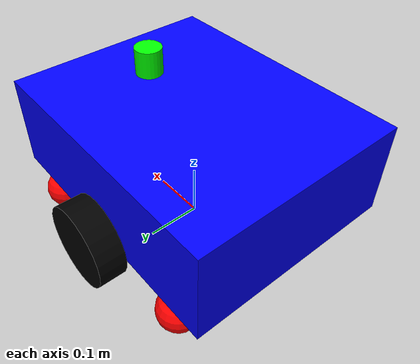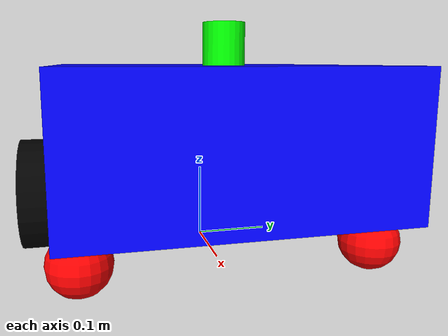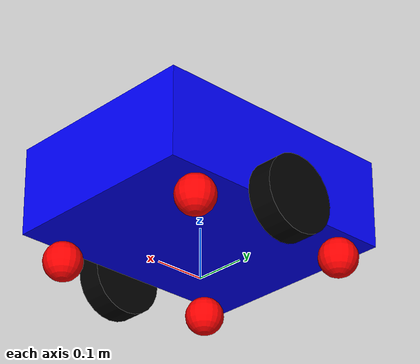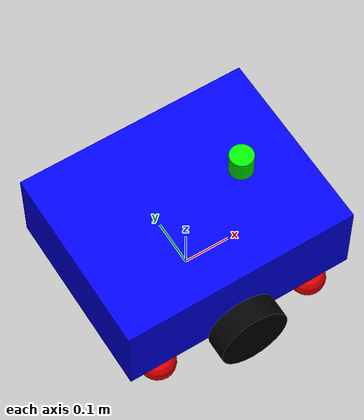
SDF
<?xml version="1.0" ?>
<sdf version="1.8">
    <model name="prestobot">

        <pose>0.0 0.0 0.0 0.0 0.0 0.0</pose>

        <link name='base_footprint'>

            <pose relative_to='__model__'>0.0 0.0 0.0 0.0 0.0 0.0</pose>

        </link>

        <link name='base_link'>

            <pose relative_to='base_footprint'>0.0 0.0 0.1625 0.0 0.0 0.0</pose>

            <inertial>
                <mass>30.0</mass>
                <inertia>
                    <ixx>0.4765625</ixx>
                    <ixy>0.0</ixy>
                    <ixz>0.0</ixz>
                    <iyy>0.7015625</iyy>
                    <iyz>0.0</iyz>
                    <izz>1.025</izz>
                </inertia>
            </inertial>

            <visual name='base_visual'>
                <geometry>
                    <box>
                        <size>0.5 0.4 0.175</size>
                    </box>
                </geometry>
                <material>
                    <ambient>0.0 0.0 1.0 1.0</ambient>
                    <diffuse>0.0 0.0 1.0 1.0</diffuse>
                    <specular>0.5 0.5 0.5 1.0</specular>
                    <emissive>0.0 0.0 0.0 1.0</emissive>
                </material>
            </visual>

            <collision name='base_collision'>
                <geometry>
                    <box>
                        <size>0.5 0.4 0.175</size>
                    </box>
                </geometry>
            </collision>

        </link>

        <link name='wheel_left_link'>

            <pose relative_to='base_link'>0.0 0.225 -0.0875 1.57 0.0 0.0</pose>

            <inertial>
                <mass>2.0</mass>
                <inertia>
                    <ixx>3.2291666e-03</ixx>
                    <ixy>0.0</ixy>
                    <ixz>0.0</ixz>
                    <iyy>3.2291666e-03</iyy>
                    <iyz>0.0</iyz>
                    <izz>5.625e-03</izz>
                </inertia>
            </inertial>

            <visual name='wheel_left_visual'>
                <geometry>
                    <cylinder>
                        <radius>0.075</radius>
                        <length>0.05</length>
                    </cylinder>
                </geometry>
                <material>
                    <ambient>0.0 0.0 0.0 1.0</ambient>
                    <diffuse>0.0 0.0 0.0 1.0</diffuse>
                    <specular>0.5 0.5 0.5 1.0</specular>
                    <emissive>0.0 0.0 0.0 1.0</emissive>
                </material>
            </visual>

            <collision name='wheel_left_collision'>
                <geometry>
                    <cylinder>
                        <radius>0.075</radius>
                        <length>0.05</length>
                    </cylinder>
                </geometry>
            </collision>

        </link>

        <link name='wheel_right_link'>

            <pose relative_to='base_link'>0.0 -0.225 -0.0875 1.57 0.0 0.0</pose>

            <inertial>
                <mass>2.0</mass>
                <inertia>
                    <ixx>3.2291666e-03</ixx>
                    <ixy>0.0</ixy>
                    <ixz>0.0</ixz>
                    <iyy>3.2291666e-03</iyy>
                    <iyz>0.0</iyz>
                    <izz>5.625e-03</izz>
                </inertia>
            </inertial>

            <visual name='wheel_right_visual'>
                <geometry>
                    <cylinder>
                        <radius>0.075</radius>
                        <length>0.05</length>
                    </cylinder>
                </geometry>
                <material>
                    <ambient>0.0 0.0 0.0 1.0</ambient>
                    <diffuse>0.0 0.0 0.0 1.0</diffuse>
                    <specular>0.5 0.5 0.5 1.0</specular>
                    <emissive>0.0 0.0 0.0 1.0</emissive>
                </material>
            </visual>

            <collision name='wheel_right_collision'>
                <geometry>
                    <cylinder>
                        <radius>0.075</radius>
                        <length>0.05</length>
                    </cylinder>
                </geometry>
            </collision>

        </link>

        <link name='caster_back_left_link'>

            <pose relative_to='base_link'>-0.175 0.175 -0.125 0.0 0.0 0.0</pose>

            <inertial>
                <mass>1.5</mass>
                <inertia>
                    <ixx>8.4375e-04</ixx>
                    <ixy>0.0</ixy>
                    <ixz>0.0</ixz>
                    <iyy>8.4375e-04</iyy>
                    <iyz>0.0</iyz>
                    <izz>8.4375e-04</izz>
                </inertia>
            </inertial>

            <visual name='caster_visual'>
                <geometry>
                    <sphere>
                        <radius>0.0375</radius>
                    </sphere>
                </geometry>
                <material>
                    <ambient>1.0 0.0 0.0 1.0</ambient>
                    <diffuse>1.0 0.0 0.0 1.0</diffuse>
                    <specular>0.5 0.5 0.5 1.0</specular>
                    <emissive>0.0 0.0 0.0 1.0</emissive>
                </material>
            </visual>

            <collision name='caster_collision'>
                <geometry>
                    <sphere>
                        <radius>0.0375</radius>
                    </sphere>
                </geometry>
            </collision>

        </link>

        <link name='caster_back_right_link'>

            <pose relative_to='base_link'>-0.175 -0.175 -0.125 0.0 0.0 0.0</pose>

            <inertial>
                <mass>1.5</mass>
                <inertia>
                    <ixx>8.4375e-04</ixx>
                    <ixy>0.0</ixy>
                    <ixz>0.0</ixz>
                    <iyy>8.4375e-04</iyy>
                    <iyz>0.0</iyz>
                    <izz>8.4375e-04</izz>
                </inertia>
            </inertial>

            <visual name='caster_visual'>
                <geometry>
                    <sphere>
                        <radius>0.0375</radius>
                    </sphere>
                </geometry>
                <material>
                    <ambient>1.0 0.0 0.0 1.0</ambient>
                    <diffuse>1.0 0.0 0.0 1.0</diffuse>
                    <specular>0.5 0.5 0.5 1.0</specular>
                    <emissive>0.0 0.0 0.0 1.0</emissive>
                </material>
            </visual>

            <collision name='caster_collision'>
                <geometry>
                    <sphere>
                        <radius>0.0375</radius>
                    </sphere>
                </geometry>
            </collision>

        </link>

        <link name='caster_front_left_link'>

            <pose relative_to='base_link'>0.175 0.175 -0.125 0.0 0.0 0.0</pose>

            <inertial>
                <mass>1.5</mass>
                <inertia>
                    <ixx>8.4375e-04</ixx>
                    <ixy>0.0</ixy>
                    <ixz>0.0</ixz>
                    <iyy>8.4375e-04</iyy>
                    <iyz>0.0</iyz>
                    <izz>8.4375e-04</izz>
                </inertia>
            </inertial>

            <visual name='caster_visual'>
                <geometry>
                    <sphere>
                        <radius>0.0375</radius>
                    </sphere>
                </geometry>
                <material>
                    <ambient>1.0 0.0 0.0 1.0</ambient>
                    <diffuse>1.0 0.0 0.0 1.0</diffuse>
                    <specular>0.5 0.5 0.5 1.0</specular>
                    <emissive>0.0 0.0 0.0 1.0</emissive>
                </material>
            </visual>

            <collision name='caster_collision'>
                <geometry>
                    <sphere>
                        <radius>0.0375</radius>
                    </sphere>
                </geometry>
            </collision>

        </link>

        <link name='caster_front_right_link'>

            <pose relative_to='base_link'>0.175 -0.175 -0.125 0.0 0.0 0.0</pose>

            <inertial>
                <mass>1.5</mass>
                <inertia>
                    <ixx>8.4375e-04</ixx>
                    <ixy>0.0</ixy>
                    <ixz>0.0</ixz>
                    <iyy>8.4375e-04</iyy>
                    <iyz>0.0</iyz>
                    <izz>8.4375e-04</izz>
                </inertia>
            </inertial>

            <visual name='caster_visual'>
                <geometry>
                    <sphere>
                        <radius>0.0375</radius>
                    </sphere>
                </geometry>
                <material>
                    <ambient>1.0 0.0 0.0 1.0</ambient>
                    <diffuse>1.0 0.0 0.0 1.0</diffuse>
                    <specular>0.5 0.5 0.5 1.0</specular>
                    <emissive>0.0 0.0 0.0 1.0</emissive>
                </material>
            </visual>

            <collision name='caster_collision'>
                <geometry>
                    <sphere>
                        <radius>0.0375</radius>
                    </sphere>
                </geometry>
            </collision>

        </link>

        <link name='imu_link'>

            <pose relative_to='base_link'>0.0 0.0 0.0875 0.0 0.0 0.0</pose>

            <sensor name='erb_imu' type='imu'>
                <always_on>true</always_on>
                <update_rate>200</update_rate>
                <topic>imu</topic>
                <imu>
                    <angular_velocity>
                        <x>
                            <noise type="gaussian">
                                <mean>0.0</mean>
                                <stddev>2e-4</stddev>
                            </noise>
                        </x>
                        <y>
                            <noise type="gaussian">
                                <mean>0.0</mean>
                                <stddev>2e-4</stddev>
                            </noise>
                        </y>
                        <z>
                            <noise type="gaussian">
                                <mean>0.0</mean>
                                <stddev>2e-4</stddev>
                            </noise>
                        </z>
                    </angular_velocity>
                    <linear_acceleration>
                        <x>
                            <noise type="gaussian">
                                <mean>0.0</mean>
                                <stddev>1.7e-2</stddev>
                            </noise>
                        </x>
                        <y>
                            <noise type="gaussian">
                                <mean>0.0</mean>
                                <stddev>1.7e-2</stddev>
                            </noise>
                        </y>
                        <z>
                            <noise type="gaussian">
                                <mean>0.0</mean>
                                <stddev>1.7e-2</stddev>
                            </noise>
                        </z>
                    </linear_acceleration>
                </imu>
            </sensor>

        </link>

        <link name='base_scan'>

            <pose relative_to='base_link'>0.125 0.0 0.1125 0.0 0.0 0.0</pose>

            <inertial>
                <mass>0.1</mass>
                <inertia>
                    <ixx>0.0364583e-03</ixx>
                    <ixy>0.0</ixy>
                    <ixz>0.0</ixz>
                    <iyy>0.0364583e-03</iyy>
                    <iyz>0.0</iyz>
                    <izz>0.03125e-03</izz>
                </inertia>
            </inertial>

            <visual name='lidar_visual'>
                <geometry>
                    <cylinder>
                        <radius>0.025</radius>
                        <length>0.05</length>
                    </cylinder>
                </geometry>
                <material>
                    <ambient>0.0 1.0 0.0 1.0</ambient>
                    <diffuse>0.0 1.0 0.0 1.0</diffuse>
                    <specular>0.5 0.5 0.5 1.0</specular>
                    <emissive>0.0 0.0 0.0 1.0</emissive>
                </material>
            </visual>

            <collision name='lidar_collision'>
                <geometry>
                    <cylinder>
                        <radius>0.025</radius>
                        <length>0.05</length>
                    </cylinder>
                </geometry>
            </collision>

            <sensor name='erb_lidar' type='gpu_lidar'>
                <always_on>true</always_on>
                <viualize>true</viualize>
                <update_rate>10</update_rate>
                <topic>scan</topic>
                <gz_frame_id>base_scan</gz_frame_id>
                <lidar>
                    <scan>
                        <horizontal>
                            <samples>360</samples>
                            <resolution>1.0</resolution>
                            <min_angle>0.0</min_angle>
                            <max_angle>6.28</max_angle>
                        </horizontal>
                    </scan>
                    <range>
                        <min>0.12</min>
                        <max>3.5</max>
                        <resolution>0.015</resolution>
                    </range>
                    <noise>
                        <type>gaussian</type>
                        <mean>0.0</mean>
                        <stddev>0.01</stddev>
                    </noise>
                </lidar>
            </sensor>

        </link>

        <joint name='base_joint' type='fixed'>

            <pose relative_to='base_link'/>
            <parent>base_footprint</parent>
            <child>base_link</child>

        </joint>

        <joint name='wheel_left_joint' type='revolute'>

            <pose relative_to='wheel_left_link'/>
            <parent>base_link</parent>
            <child>wheel_left_link</child>
            <axis>
                <xyz expressed_in='__model__'>0 1 0</xyz>
                <limit>
                    <lower>-1.79769e+308</lower>
                    <upper>1.79769e+308</upper>
                    <effort>20.0</effort>
                </limit>
            </axis>

        </joint>

        <joint name='wheel_right_joint' type='revolute'>

            <pose relative_to='wheel_right_link'/>
            <parent>base_link</parent>
            <child>wheel_right_link</child>
            <axis>
                <xyz expressed_in='__model__'>0 1 0</xyz>
                <limit>
                    <lower>-1.79769e+308</lower>
                    <upper>1.79769e+308</upper>
                    <effort>20.0</effort>
                </limit>
            </axis>

        </joint>

        <joint name='caster_back_left_joint' type='ball'>

            <parent>base_link</parent>
            <child>caster_back_left_link</child>

        </joint>

        <joint name='caster_back_right_joint' type='ball'>

            <parent>base_link</parent>
            <child>caster_back_right_link</child>

        </joint>

        <joint name='caster_front_left_joint' type='ball'>

            <parent>base_link</parent>
            <child>caster_front_left_link</child>

        </joint>

        <joint name='caster_front_right_joint' type='ball'>

            <parent>base_link</parent>
            <child>caster_front_right_link</child>

        </joint>

        <joint name='imu_joint' type='fixed'>

            <pose relative_to='imu_link'/>
            <parent>base_link</parent>
            <child>imu_link</child>

        </joint>

        <joint name='lidar_joint' type='fixed'>

            <pose relative_to='base_scan'/>
            <parent>base_link</parent>
            <child>base_scan</child>

        </joint>

        <plugin
            filename="gz-sim-diff-drive-system"
            name="gz::sim::systems::DiffDrive">

            <left_joint>wheel_left_joint</left_joint>
            <right_joint>wheel_right_joint</right_joint>

            <wheel_separation>0.45</wheel_separation>
            <wheel_radius>0.075</wheel_radius>

            <topic>cmd_vel</topic>

            <odom_topic>odom</odom_topic>
            <frame_id>odom</frame_id>
            <child_frame_id>base_footprint</child_frame_id>
            <odom_publish_frequency>1</odom_publish_frequency>

            <tf_topic>tf</tf_topic>
        </plugin>

        <plugin
            filename="gz-sim-joint-state-publisher-system"
            name="gz::sim::systems::JointStatePublisher">

            <topic>joint_states</topic>
            <joint_name>wheel_left_joint</joint_name>
            <joint_name>wheel_right_joint</joint_name>
        </plugin>

        <plugin
            filename="gz-sim-imu-system"
            name="gz::sim::systems::Imu">
        </plugin>

        <plugin
            filename="gz-sim-sensors-system"
            name="gz::sim::systems::Sensors">

            <topic>lidar</topic>
            <render_engine>ogre2</render_engine>
        </plugin>

        <!-- Moving Forward-->
        <plugin filename="gz-sim-triggered-publisher-system"
                name="gz::sim::systems::TriggeredPublisher">
            <input type="gz.msgs.Int32" topic="/keyboard/keypress">
                <match field="data">16777235</match>
            </input>
            <output type="gz.msgs.Twist" topic="/cmd_vel">
                linear: {x: 0.5}, angular: {z: 0.0}
            </output>
        </plugin>
        <!-- Moving Backward-->
        <plugin filename="gz-sim-triggered-publisher-system"
                name="gz::sim::systems::TriggeredPublisher">
            <input type="gz.msgs.Int32" topic="/keyboard/keypress">
                <match field="data">16777237</match>
            </input>
            <output type="gz.msgs.Twist" topic="/cmd_vel">
                linear: {x: -0.5}, angular: {z: 0.0}
            </output>
        </plugin>
        <!-- Moving Left-->
        <plugin filename="gz-sim-triggered-publisher-system"
                name="gz::sim::systems::TriggeredPublisher">
            <input type="gz.msgs.Int32" topic="/keyboard/keypress">
                <match field="data">16777234</match>
            </input>
            <output type="gz.msgs.Twist" topic="/cmd_vel">
                linear: {x: 0.0}, angular: {z: 0.5}
            </output>
        </plugin>
        <!-- Moving Right-->
        <plugin filename="gz-sim-triggered-publisher-system"
                name="gz::sim::systems::TriggeredPublisher">
            <input type="gz.msgs.Int32" topic="/keyboard/keypress">
                <match field="data">16777236</match>
            </input>
            <output type="gz.msgs.Twist" topic="/cmd_vel">
                linear: {x: 0.0}, angular: {z: -0.5}
            </output>
        </plugin>

    </model>
</sdf>
